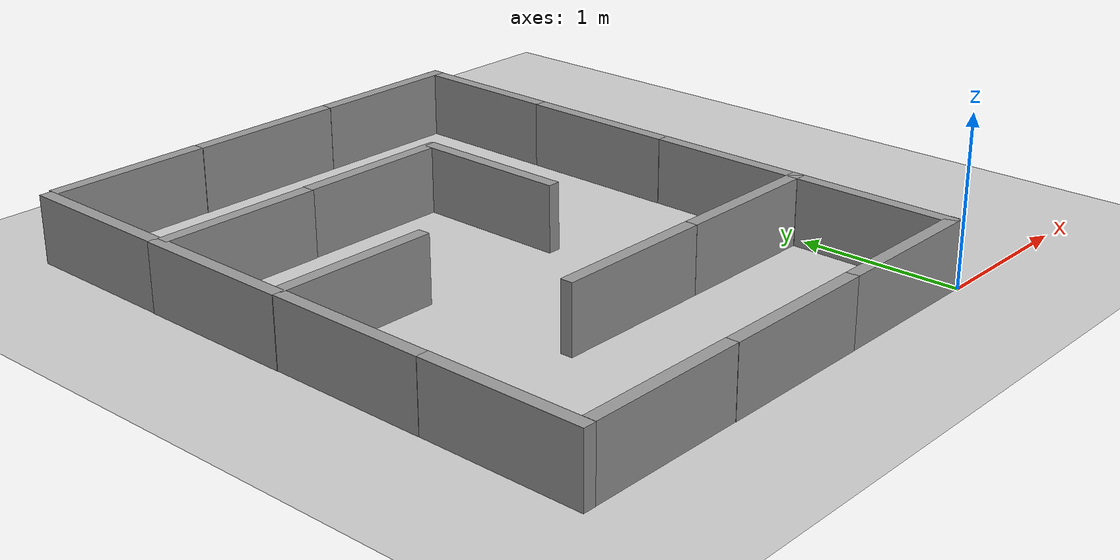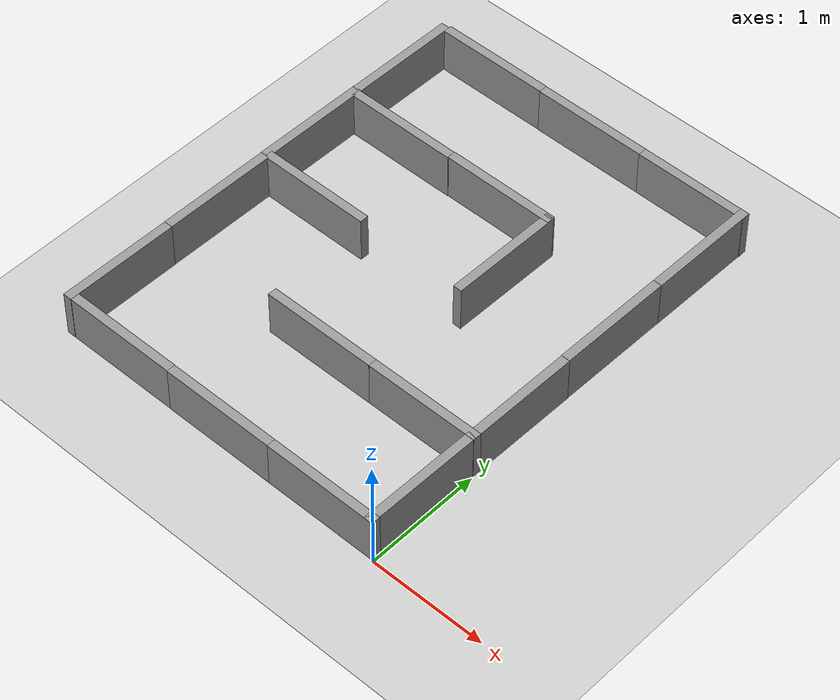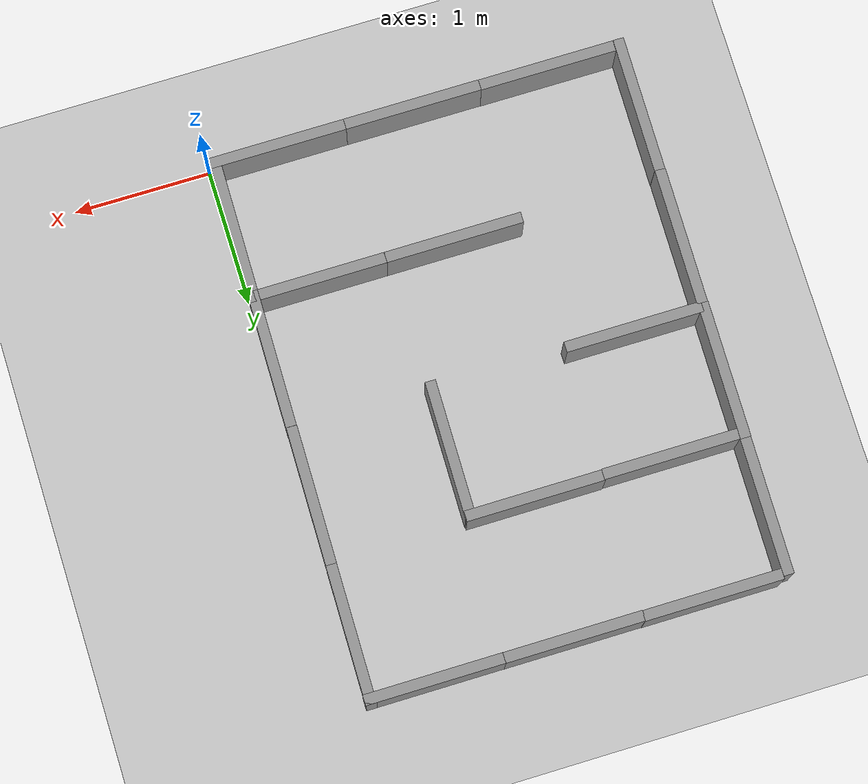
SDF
<sdf version="1.6">
 <world name="default">
  <light name="sun" type="directional">
   <pose>0 0 10 0 -0 0</pose>
   <diffuse>0.8 0.8 0.8 1</diffuse>
   <specular>0.2 0.2 0.2 1</specular>
   <attenuation>
    <range>1000</range>
    <constant>0.9</constant>
    <linear>0.01</linear>
    <quadratic>0.001</quadratic>
   </attenuation>
   <direction>-0.5 0.1 -0.9</direction>
  </light>
  <model name="ground_plane">
   <static>1</static>
   <link name="link">
    <collision name="collision">
     <geometry><plane><normal>0 0 1</normal><size>100 100</size></plane></geometry>
     <surface><friction><ode><mu>100</mu><mu2>50</mu2></ode></friction></surface>
    </collision>
    <visual name="visual">
     <cast_shadows>0</cast_shadows>
     <geometry><plane><normal>0 0 1</normal><size>100 100</size></plane></geometry>
     <material>
      <script><uri>file://media/materials/scripts/gazebo.material</uri><name>Gazebo/Grey</name></script>
     </material>
    </visual>
   </link>
  </model>
  <gravity>0 0 -9.8</gravity>
  <magnetic_field>6e-06 2.3e-05 -4.2e-05</magnetic_field>
  <atmosphere type="adiabatic"/>
  <physics name="default_physics" default="0" type="ode">
   <max_step_size>0.001</max_step_size>
   <real_time_factor>1</real_time_factor>
   <real_time_update_rate>1000</real_time_update_rate>
  </physics>
  <scene><ambient>0.4 0.4 0.4 1</ambient><background>0.7 0.7 0.7 1</background><shadows>1</shadows></scene>
  <spherical_coordinates>
   <surface_model>EARTH_WGS84</surface_model>
   <latitude_deg>0</latitude_deg>
   <longitude_deg>0</longitude_deg>
   <elevation>0</elevation>
   <heading_deg>0</heading_deg>
  </spherical_coordinates>
  <model name="unit_box_clone">
   <static>1</static>
   <pose>-0.502621 1.05147 0.2031 0 -0 0</pose>
   <link name="link">
    <inertial>
     <mass>1000</mass>
     <inertia>
      <ixx>0.166667</ixx>
      <ixy>0</ixy>
      <ixz>0</ixz>
      <iyy>0.166667</iyy>
      <iyz>0</iyz>
      <izz>0.166667</izz>
     </inertia>
    </inertial>
    <collision name="collision"><geometry><box><size>1 0.077351 0.407845</size></box></geometry></collision>
    <visual name="visual">
     <geometry><box><size>1 0.077351 0.407845</size></box></geometry>
     <material>
      <script><name>Gazebo/Grey</name><uri>file://media/materials/scripts/gazebo.material</uri></script>
     </material>
    </visual>
   </link>
  </model>
  <model name="unit_box_clone_0">
   <static>1</static>
   <pose>-1.50599 0.042935 0.2031 0 -0 0</pose>
   <link name="link">
    <inertial>
     <mass>1000</mass>
     <inertia>
      <ixx>0.166667</ixx>
      <ixy>0</ixy>
      <ixz>0</ixz>
      <iyy>0.166667</iyy>
      <iyz>0</iyz>
      <izz>0.166667</izz>
     </inertia>
    </inertial>
    <collision name="collision"><geometry><box><size>1 0.077351 0.407845</size></box></geometry></collision>
    <visual name="visual">
     <geometry><box><size>1 0.077351 0.407845</size></box></geometry>
     <material>
      <script><name>Gazebo/Grey</name><uri>file://media/materials/scripts/gazebo.material</uri></script>
     </material>
    </visual>
   </link>
  </model>
  <model name="unit_box_clone_0_clone">
   <static>1</static>
   <pose>-1.50308 1.05153 0.2031 0 -0 0</pose>
   <link name="link">
    <inertial>
     <mass>1000</mass>
     <inertia>
      <ixx>0.166667</ixx>
      <ixy>0</ixy>
      <ixz>0</ixz>
      <iyy>0.166667</iyy>
      <iyz>0</iyz>
      <izz>0.166667</izz>
     </inertia>
    </inertial>
    <collision name="collision"><geometry><box><size>1 0.077351 0.407845</size></box></geometry></collision>
    <visual name="visual">
     <geometry><box><size>1 0.077351 0.407845</size></box></geometry>
     <material>
      <script><name>Gazebo/Grey</name><uri>file://media/materials/scripts/gazebo.material</uri></script>
     </material>
    </visual>
   </link>
  </model>
  <model name="unit_box_clone_0_clone_0">
   <static>1</static>
   <pose>-3.03743 0.504939 0.2031 0 0 -1.5815</pose>
   <link name="link">
    <inertial>
     <mass>1000</mass>
     <inertia>
      <ixx>0.166667</ixx>
      <ixy>0</ixy>
      <ixz>0</ixz>
      <iyy>0.166667</iyy>
      <iyz>0</iyz>
      <izz>0.166667</izz>
     </inertia>
    </inertial>
    <collision name="collision"><geometry><box><size>1 0.077351 0.407845</size></box></geometry></collision>
    <visual name="visual">
     <geometry><box><size>1 0.077351 0.407845</size></box></geometry>
     <material>
      <script><name>Gazebo/Grey</name><uri>file://media/materials/scripts/gazebo.material</uri></script>
     </material>
    </visual>
   </link>
  </model>
  <model name="unit_box_clone_0_clone_0_clone">
   <static>1</static>
   <pose>-2.50248 0.0447 0.2031 0 -0 0</pose>
   <link name="link">
    <inertial>
     <mass>1000</mass>
     <inertia>
      <ixx>0.166667</ixx>
      <ixy>0</ixy>
      <ixz>0</ixz>
      <iyy>0.166667</iyy>
      <iyz>0</iyz>
      <izz>0.166667</izz>
     </inertia>
    </inertial>
    <collision name="collision"><geometry><box><size>1 0.077351 0.407845</size></box></geometry></collision>
    <visual name="visual">
     <geometry><box><size>1 0.077351 0.407845</size></box></geometry>
     <material>
      <script><name>Gazebo/Grey</name><uri>file://media/materials/scripts/gazebo.material</uri></script>
     </material>
    </visual>
   </link>
  </model>
  <model name="unit_box_clone_0_clone_0_clone_0">
   <static>1</static>
   <pose>-3.02858 1.5027 0.2031 0 0 -1.5815</pose>
   <link name="link">
    <inertial>
     <mass>1000</mass>
     <inertia>
      <ixx>0.166667</ixx>
      <ixy>0</ixy>
      <ixz>0</ixz>
      <iyy>0.166667</iyy>
      <iyz>0</iyz>
      <izz>0.166667</izz>
     </inertia>
    </inertial>
    <collision name="collision"><geometry><box><size>1 0.077351 0.407845</size></box></geometry></collision>
    <visual name="visual">
     <geometry><box><size>1 0.077351 0.407845</size></box></geometry>
     <material>
      <script><name>Gazebo/Grey</name><uri>file://media/materials/scripts/gazebo.material</uri></script>
     </material>
    </visual>
   </link>
  </model>
  <model name="unit_box_clone_0_clone_0_clone_0_clone">
   <static>1</static>
   <pose>-3.02103 2.49935 0.2031 0 0 -1.5815</pose>
   <link name="link">
    <inertial>
     <mass>1000</mass>
     <inertia>
      <ixx>0.166667</ixx>
      <ixy>0</ixy>
      <ixz>0</ixz>
      <iyy>0.166667</iyy>
      <iyz>0</iyz>
      <izz>0.166667</izz>
     </inertia>
    </inertial>
    <collision name="collision"><geometry><box><size>1 0.077351 0.407845</size></box></geometry></collision>
    <visual name="visual">
     <geometry><box><size>1 0.077351 0.407845</size></box></geometry>
     <material>
      <script><name>Gazebo/Grey</name><uri>file://media/materials/scripts/gazebo.material</uri></script>
     </material>
    </visual>
   </link>
  </model>
  <model name="unit_box_clone_0_clone_clone">
   <static>1</static>
   <pose>-2.49395 2.95817 0.2031 0 -0 0</pose>
   <link name="link">
    <inertial>
     <mass>1000</mass>
     <inertia>
      <ixx>0.166667</ixx>
      <ixy>0</ixy>
      <ixz>0</ixz>
      <iyy>0.166667</iyy>
      <iyz>0</iyz>
      <izz>0.166667</izz>
     </inertia>
    </inertial>
    <collision name="collision"><geometry><box><size>1 0.077351 0.407845</size></box></geometry></collision>
    <visual name="visual">
     <geometry><box><size>1 0.077351 0.407845</size></box></geometry>
     <material>
      <script><name>Gazebo/Grey</name><uri>file://media/materials/scripts/gazebo.material</uri></script>
     </material>
    </visual>
   </link>
  </model>
  <model name="unit_box_clone_0_clone_0_clone_0_clone_clone">
   <static>1</static>
   <pose>-1.039 2.48408 0.2031 0 0 -1.5815</pose>
   <link name="link">
    <inertial>
     <mass>1000</mass>
     <inertia>
      <ixx>0.166667</ixx>
      <ixy>0</ixy>
      <ixz>0</ixz>
      <iyy>0.166667</iyy>
      <iyz>0</iyz>
      <izz>0.166667</izz>
     </inertia>
    </inertial>
    <collision name="collision"><geometry><box><size>1 0.077351 0.407845</size></box></geometry></collision>
    <visual name="visual">
     <geometry><box><size>1 0.077351 0.407845</size></box></geometry>
     <material>
      <script><name>Gazebo/Grey</name><uri>file://media/materials/scripts/gazebo.material</uri></script>
     </material>
    </visual>
   </link>
  </model>
  <model name="unit_box_clone_0_clone_clone_clone">
   <static>1</static>
   <pose>-1.50014 2.96228 0.2031 0 -0 0</pose>
   <link name="link">
    <inertial>
     <mass>1000</mass>
     <inertia>
      <ixx>0.166667</ixx>
      <ixy>0</ixy>
      <ixz>0</ixz>
      <iyy>0.166667</iyy>
      <iyz>0</iyz>
      <izz>0.166667</izz>
     </inertia>
    </inertial>
    <collision name="collision"><geometry><box><size>1 0.077351 0.407845</size></box></geometry></collision>
    <visual name="visual">
     <geometry><box><size>1 0.077351 0.407845</size></box></geometry>
     <material>
      <script><name>Gazebo/Grey</name><uri>file://media/materials/scripts/gazebo.material</uri></script>
     </material>
    </visual>
   </link>
  </model>
  <model name="unit_box_clone_0_clone_0_clone_0_clone_clone_clone">
   <static>1</static>
   <pose>-0.036956 1.51203 0.2031 0 0 -1.5815</pose>
   <link name="link">
    <inertial>
     <mass>1000</mass>
     <inertia>
      <ixx>0.166667</ixx>
      <ixy>0</ixy>
      <ixz>0</ixz>
      <iyy>0.166667</iyy>
      <iyz>0</iyz>
      <izz>0.166667</izz>
     </inertia>
    </inertial>
    <collision name="collision"><geometry><box><size>1 0.077351 0.407845</size></box></geometry></collision>
    <visual name="visual">
     <geometry><box><size>1 0.077351 0.407845</size></box></geometry>
     <material>
      <script><name>Gazebo/Grey</name><uri>file://media/materials/scripts/gazebo.material</uri></script>
     </material>
    </visual>
   </link>
  </model>
  <model name="unit_box_clone_0_clone_0_clone_0_clone_clone_clone_clone">
   <static>1</static>
   <pose>-0.028061 2.51247 0.2031 0 0 -1.5815</pose>
   <link name="link">
    <inertial>
     <mass>1000</mass>
     <inertia>
      <ixx>0.166667</ixx>
      <ixy>0</ixy>
      <ixz>0</ixz>
      <iyy>0.166667</iyy>
      <iyz>0</iyz>
      <izz>0.166667</izz>
     </inertia>
    </inertial>
    <collision name="collision"><geometry><box><size>1 0.077351 0.407845</size></box></geometry></collision>
    <visual name="visual">
     <geometry><box><size>1 0.077351 0.407845</size></box></geometry>
     <material>
      <script><name>Gazebo/Grey</name><uri>file://media/materials/scripts/gazebo.material</uri></script>
     </material>
    </visual>
   </link>
  </model>
  <model name="unit_box_clone_0_clone_0_clone_0_clone_clone_clone_clone_clone">
   <static>1</static>
   <pose>-0.016377 3.50829 0.2031 0 0 -1.5815</pose>
   <link name="link">
    <inertial>
     <mass>1000</mass>
     <inertia>
      <ixx>0.166667</ixx>
      <ixy>0</ixy>
      <ixz>0</ixz>
      <iyy>0.166667</iyy>
      <iyz>0</iyz>
      <izz>0.166667</izz>
     </inertia>
    </inertial>
    <collision name="collision"><geometry><box><size>1 0.077351 0.407845</size></box></geometry></collision>
    <visual name="visual">
     <geometry><box><size>1 0.077351 0.407845</size></box></geometry>
     <material>
      <script><name>Gazebo/Grey</name><uri>file://media/materials/scripts/gazebo.material</uri></script>
     </material>
    </visual>
   </link>
  </model>
  <model name="unit_box_clone_0_clone_clone_clone_clone">
   <static>1</static>
   <pose>-0.470522 3.96898 0.2031 0 -0 0</pose>
   <link name="link">
    <inertial>
     <mass>1000</mass>
     <inertia>
      <ixx>0.166667</ixx>
      <ixy>0</ixy>
      <ixz>0</ixz>
      <iyy>0.166667</iyy>
      <iyz>0</iyz>
      <izz>0.166667</izz>
     </inertia>
    </inertial>
    <collision name="collision">
     <geometry><box><size>0.999996 0.077351 0.407845</size></box></geometry>
    </collision>
    <visual name="visual">
     <geometry><box><size>0.999996 0.077351 0.407845</size></box></geometry>
     <material>
      <script><name>Gazebo/Grey</name><uri>file://media/materials/scripts/gazebo.material</uri></script>
     </material>
    </visual>
   </link>
  </model>
  <model name="unit_box_clone_0_clone_clone_clone_clone_clone">
   <static>1</static>
   <pose>-1.46782 3.96977 0.2031 0 -0 0</pose>
   <link name="link">
    <inertial>
     <mass>1000</mass>
     <inertia>
      <ixx>0.166667</ixx>
      <ixy>0</ixy>
      <ixz>0</ixz>
      <iyy>0.166667</iyy>
      <iyz>0</iyz>
      <izz>0.166667</izz>
     </inertia>
    </inertial>
    <collision name="collision">
     <geometry><box><size>0.999996 0.077351 0.407845</size></box></geometry>
    </collision>
    <visual name="visual">
     <geometry><box><size>0.999996 0.077351 0.407845</size></box></geometry>
     <material>
      <script><name>Gazebo/Grey</name><uri>file://media/materials/scripts/gazebo.material</uri></script>
     </material>
    </visual>
   </link>
  </model>
  <model name="unit_box_clone_0_clone_clone_clone_clone_clone_0">
   <static>1</static>
   <pose>-2.46457 3.97254 0.2031 0 -0 0</pose>
   <link name="link">
    <inertial>
     <mass>1000</mass>
     <inertia>
      <ixx>0.166667</ixx>
      <ixy>0</ixy>
      <ixz>0</ixz>
      <iyy>0.166667</iyy>
      <iyz>0</iyz>
      <izz>0.166667</izz>
     </inertia>
    </inertial>
    <collision name="collision">
     <geometry><box><size>0.999996 0.077351 0.407845</size></box></geometry>
    </collision>
    <visual name="visual">
     <geometry><box><size>0.999996 0.077351 0.407845</size></box></geometry>
     <material>
      <script><name>Gazebo/Grey</name><uri>file://media/materials/scripts/gazebo.material</uri></script>
     </material>
    </visual>
   </link>
  </model>
  <model name="unit_box_clone_0_clone_0_clone_0_clone_clone_0">
   <static>1</static>
   <pose>-3.00784 3.491 0.2031 0 0 -1.5815</pose>
   <link name="link">
    <inertial>
     <mass>1000</mass>
     <inertia>
      <ixx>0.166667</ixx>
      <ixy>0</ixy>
      <ixz>0</ixz>
      <iyy>0.166667</iyy>
      <iyz>0</iyz>
      <izz>0.166667</izz>
     </inertia>
    </inertial>
    <collision name="collision"><geometry><box><size>1 0.077351 0.407845</size></box></geometry></collision>
    <visual name="visual">
     <geometry><box><size>1 0.077351 0.407845</size></box></geometry>
     <material>
      <script><name>Gazebo/Grey</name><uri>file://media/materials/scripts/gazebo.material</uri></script>
     </material>
    </visual>
   </link>
  </model>
  <model name="unit_box_clone_0_clone_0_clone_0_clone_clone_clone_0">
   <static>1</static>
   <pose>-0.047608 0.511586 0.2031 0 0 -1.5815</pose>
   <link name="link">
    <inertial>
     <mass>1000</mass>
     <inertia>
      <ixx>0.166667</ixx>
      <ixy>0</ixy>
      <ixz>0</ixz>
      <iyy>0.166667</iyy>
      <iyz>0</iyz>
      <izz>0.166667</izz>
     </inertia>
    </inertial>
    <collision name="collision"><geometry><box><size>1 0.077351 0.407845</size></box></geometry></collision>
    <visual name="visual">
     <geometry><box><size>1 0.077351 0.407845</size></box></geometry>
     <material>
      <script><name>Gazebo/Grey</name><uri>file://media/materials/scripts/gazebo.material</uri></script>
     </material>
    </visual>
   </link>
  </model>
  <model name="unit_box_clone_0_clone_clone_0">
   <static>1</static>
   <pose>-2.51458 2.02834 0.2031 0 -0 0</pose>
   <link name="link">
    <inertial>
     <mass>1000</mass>
     <inertia>
      <ixx>0.166667</ixx>
      <ixy>0</ixy>
      <ixz>0</ixz>
      <iyy>0.166667</iyy>
      <iyz>0</iyz>
      <izz>0.166667</izz>
     </inertia>
    </inertial>
    <collision name="collision"><geometry><box><size>1 0.077351 0.407845</size></box></geometry></collision>
    <visual name="visual">
     <geometry><box><size>1 0.077351 0.407845</size></box></geometry>
     <material>
      <script><name>Gazebo/Grey</name><uri>file://media/materials/scripts/gazebo.material</uri></script>
     </material>
    </visual>
   </link>
  </model>
  <model name="unit_box_clone_0_clone_1">
   <static>1</static>
   <pose>-0.510957 0.042934 0.2031 0 -0 0</pose>
   <link name="link">
    <inertial>
     <mass>1000</mass>
     <inertia>
      <ixx>0.166667</ixx>
      <ixy>0</ixy>
      <ixz>0</ixz>
      <iyy>0.166667</iyy>
      <iyz>0</iyz>
      <izz>0.166667</izz>
     </inertia>
    </inertial>
    <collision name="collision"><geometry><box><size>1 0.077351 0.407845</size></box></geometry></collision>
    <visual name="visual">
     <geometry><box><size>1 0.077351 0.407845</size></box></geometry>
     <material>
      <script><name>Gazebo/Grey</name><uri>file://media/materials/scripts/gazebo.material</uri></script>
     </material>
    </visual>
   </link>
  </model>
 </world>
</sdf>
